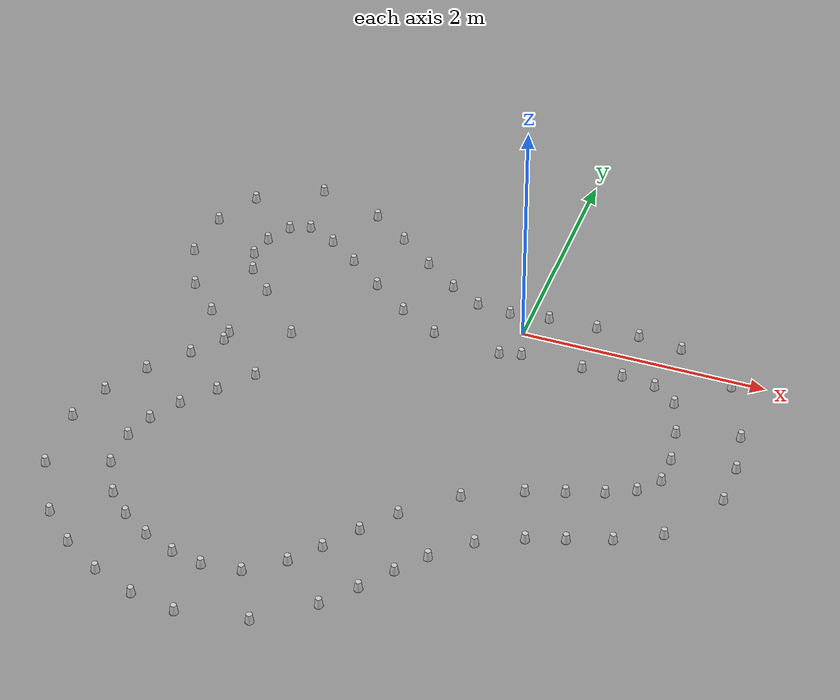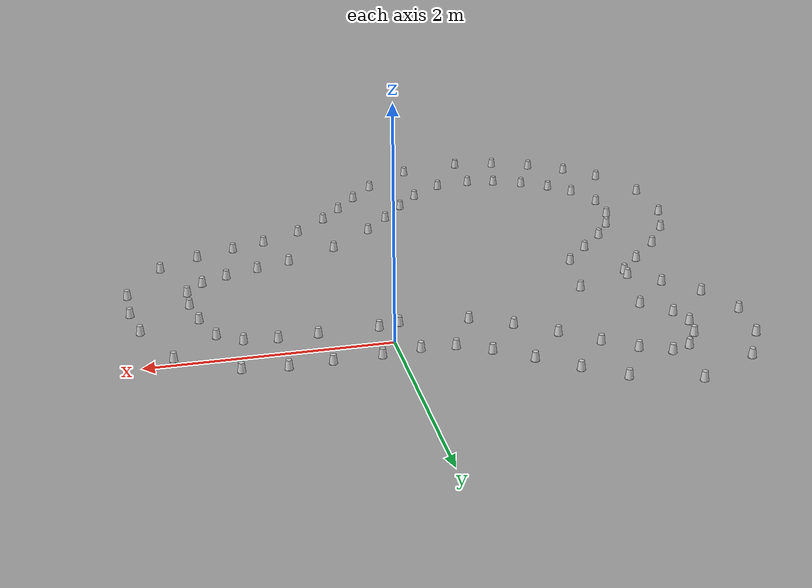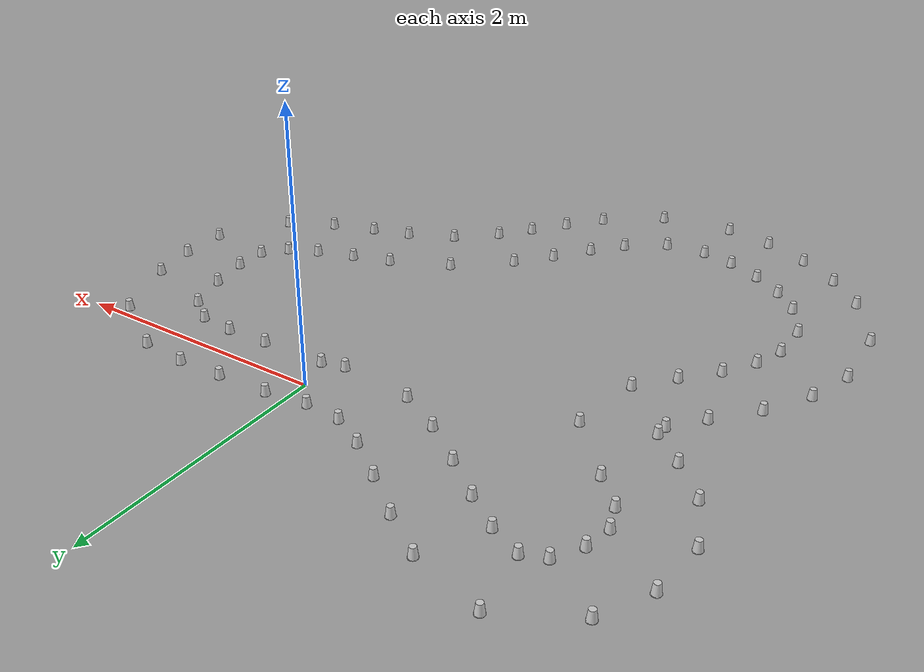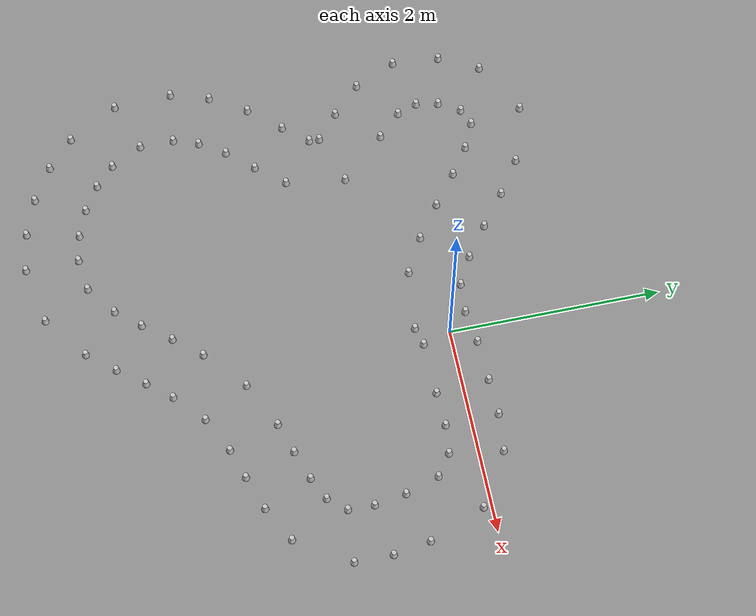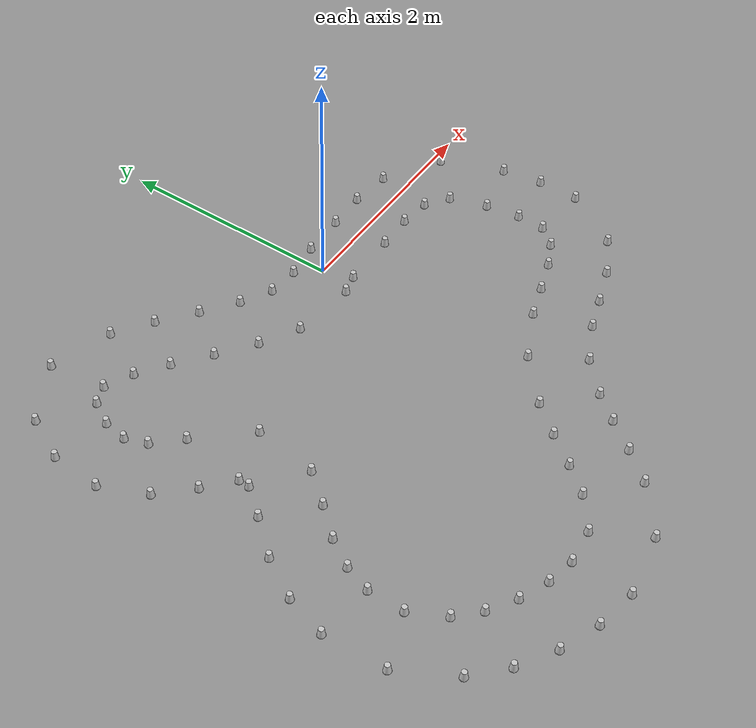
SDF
<?xml version='1.0' encoding='UTF-8'?>
<sdf version="1.4">
  <model name="some track">
    <include>
      <uri>model://cone_yellow</uri>
      <pose>0.07430866670189087 -0.2638961795019628 0 0 0 0</pose>
      <name>cone_right_0</name>
    </include>
    <include>
      <uri>model://cone_yellow</uri>
      <pose>0.5748610550502125 -0.2520921069309254 0 0 0 0</pose>
      <name>cone_right_1</name>
    </include>
    <include>
      <uri>model://cone_yellow</uri>
      <pose>0.9016667472375249 -0.24053589664841046 0 0 0 0</pose>
      <name>cone_right_2</name>
    </include>
    <include>
      <uri>model://cone_yellow</uri>
      <pose>1.1763415312059293 -0.2705759295244309 0 0 0 0</pose>
      <name>cone_right_3</name>
    </include>
    <include>
      <uri>model://cone_yellow</uri>
      <pose>1.3763170020076358 -0.4116887312444141 0 0 0 0</pose>
      <name>cone_right_4</name>
    </include>
    <include>
      <uri>model://cone_yellow</uri>
      <pose>1.4798660922021272 -0.7336152892234061 0 0 0 0</pose>
      <name>cone_right_5</name>
    </include>
    <include>
      <uri>model://cone_yellow</uri>
      <pose>1.5276191321703758 -1.0334740695669802 0 0 0 0</pose>
      <name>cone_right_6</name>
    </include>
    <include>
      <uri>model://cone_yellow</uri>
      <pose>1.5214567105554928 -1.2794951866127873 0 0 0 0</pose>
      <name>cone_right_7</name>
    </include>
    <include>
      <uri>model://cone_yellow</uri>
      <pose>1.3774204180928538 -1.4451368813345178 0 0 0 0</pose>
      <name>cone_right_8</name>
    </include>
    <include>
      <uri>model://cone_yellow</uri>
      <pose>1.157840332318151 -1.5493517444985283 0 0 0 0</pose>
      <name>cone_right_9</name>
    </include>
    <include>
      <uri>model://cone_yellow</uri>
      <pose>0.8755564144367286 -1.6447745633668123 0 0 0 0</pose>
      <name>cone_right_10</name>
    </include>
    <include>
      <uri>model://cone_yellow</uri>
      <pose>0.5829038775490897 -1.7391457687664875 0 0 0 0</pose>
      <name>cone_right_11</name>
    </include>
    <include>
      <uri>model://cone_yellow</uri>
      <pose>0.14491013542980857 -1.9468608420953462 0 0 0 0</pose>
      <name>cone_right_12</name>
    </include>
    <include>
      <uri>model://cone_yellow</uri>
      <pose>-0.23542150183054916 -2.2796049442948862 0 0 0 0</pose>
      <name>cone_right_13</name>
    </include>
    <include>
      <uri>model://cone_yellow</uri>
      <pose>-0.4483009072300326 -2.5325707649158056 0 0 0 0</pose>
      <name>cone_right_14</name>
    </include>
    <include>
      <uri>model://cone_yellow</uri>
      <pose>-0.6450129606127291 -2.787502713797505 0 0 0 0</pose>
      <name>cone_right_15</name>
    </include>
    <include>
      <uri>model://cone_yellow</uri>
      <pose>-0.8343871104505265 -3.0111173200243018 0 0 0 0</pose>
      <name>cone_right_16</name>
    </include>
    <include>
      <uri>model://cone_yellow</uri>
      <pose>-1.114851493637219 -3.2178944309040296 0 0 0 0</pose>
      <name>cone_right_17</name>
    </include>
    <include>
      <uri>model://cone_yellow</uri>
      <pose>-1.4236344250713888 -3.2539900093771834 0 0 0 0</pose>
      <name>cone_right_18</name>
    </include>
    <include>
      <uri>model://cone_yellow</uri>
      <pose>-1.673426091023246 -3.205180904386297 0 0 0 0</pose>
      <name>cone_right_19</name>
    </include>
    <include>
      <uri>model://cone_yellow</uri>
      <pose>-1.9284727515597517 -3.102299525745067 0 0 0 0</pose>
      <name>cone_right_20</name>
    </include>
    <include>
      <uri>model://cone_yellow</uri>
      <pose>-2.1588559409976433 -2.9560352942310755 0 0 0 0</pose>
      <name>cone_right_21</name>
    </include>
    <include>
      <uri>model://cone_yellow</uri>
      <pose>-2.342334074847603 -2.7779407319128455 0 0 0 0</pose>
      <name>cone_right_22</name>
    </include>
    <include>
      <uri>model://cone_yellow</uri>
      <pose>-2.4949831682069865 -2.481363429575017 0 0 0 0</pose>
      <name>cone_right_23</name>
    </include>
    <include>
      <uri>model://cone_yellow</uri>
      <pose>-2.494459920703485 -2.159965609654933 0 0 0 0</pose>
      <name>cone_right_24</name>
    </include>
    <include>
      <uri>model://cone_yellow</uri>
      <pose>-2.412615154532264 -1.9260396138208535 0 0 0 0</pose>
      <name>cone_right_25</name>
    </include>
    <include>
      <uri>model://cone_yellow</uri>
      <pose>-2.261699598421077 -1.6896284952703042 0 0 0 0</pose>
      <name>cone_right_26</name>
    </include>
    <include>
      <uri>model://cone_yellow</uri>
      <pose>-2.0485210873663133 -1.4486108764327281 0 0 0 0</pose>
      <name>cone_right_27</name>
    </include>
    <include>
      <uri>model://cone_yellow</uri>
      <pose>-1.831534879748447 -1.1879410710765632 0 0 0 0</pose>
      <name>cone_right_28</name>
    </include>
    <include>
      <uri>model://cone_yellow</uri>
      <pose>-1.748579733300911 -0.6282150702822639 0 0 0 0</pose>
      <name>cone_right_29</name>
    </include>
    <include>
      <uri>model://cone_yellow</uri>
      <pose>-2.1316545948452066 -0.20440502353741183 0 0 0 0</pose>
      <name>cone_right_30</name>
    </include>
    <include>
      <uri>model://cone_yellow</uri>
      <pose>-2.3421167732172883 0.01252069447264581 0 0 0 0</pose>
      <name>cone_right_31</name>
    </include>
    <include>
      <uri>model://cone_yellow</uri>
      <pose>-2.410021019411043 0.20411792330180306 0 0 0 0</pose>
      <name>cone_right_32</name>
    </include>
    <include>
      <uri>model://cone_yellow</uri>
      <pose>-2.370363605037843 0.41447098112218456 0 0 0 0</pose>
      <name>cone_right_33</name>
    </include>
    <include>
      <uri>model://cone_yellow</uri>
      <pose>-2.25413358018921 0.6133565820576551 0 0 0 0</pose>
      <name>cone_right_34</name>
    </include>
    <include>
      <uri>model://cone_yellow</uri>
      <pose>-2.091167621797466 0.67868330867577 0 0 0 0</pose>
      <name>cone_right_35</name>
    </include>
    <include>
      <uri>model://cone_yellow</uri>
      <pose>-1.849620879036397 0.5661163002547369 0 0 0 0</pose>
      <name>cone_right_36</name>
    </include>
    <include>
      <uri>model://cone_yellow</uri>
      <pose>-1.5953832951943367 0.3879262579523245 0 0 0 0</pose>
      <name>cone_right_37</name>
    </include>
    <include>
      <uri>model://cone_yellow</uri>
      <pose>-1.307555807323895 0.16358131667011547 0 0 0 0</pose>
      <name>cone_right_38</name>
    </include>
    <include>
      <uri>model://cone_yellow</uri>
      <pose>-0.9988897912046181 -0.0617445838386583 0 0 0 0</pose>
      <name>cone_right_39</name>
    </include>
    <include>
      <uri>model://cone_yellow</uri>
      <pose>-0.6686155065677699 -0.24386478884162519 0 0 0 0</pose>
      <name>cone_right_40</name>
    </include>
    <include>
      <uri>model://cone_yellow</uri>
      <pose>-0.09852624889425793 -0.3086808771177365 0 0 0 0</pose>
      <name>cone_right_41</name>
    </include>
    <include>
      <uri>model://cone_blue</uri>
      <pose>0.1482748478648746 0.23060256068264542 0 0 0 0</pose>
      <name>cone_left_0</name>
    </include>
    <include>
      <uri>model://cone_blue</uri>
      <pose>0.543329024144354 0.2469126335545253 0 0 0 0</pose>
      <name>cone_left_1</name>
    </include>
    <include>
      <uri>model://cone_blue</uri>
      <pose>0.8931277722285759 0.25939118394014554 0 0 0 0</pose>
      <name>cone_left_2</name>
    </include>
    <include>
      <uri>model://cone_blue</uri>
      <pose>1.255693967377736 0.2230871042076882 0 0 0 0</pose>
      <name>cone_left_3</name>
    </include>
    <include>
      <uri>model://cone_blue</uri>
      <pose>1.7484933293791858 -0.07779536302002885 0 0 0 0</pose>
      <name>cone_left_4</name>
    </include>
    <include>
      <uri>model://cone_blue</uri>
      <pose>1.965321973785794 -0.6138965060863196 0 0 0 0</pose>
      <name>cone_left_5</name>
    </include>
    <include>
      <uri>model://cone_blue</uri>
      <pose>2.0228444290013297 -0.9645400041225746 0 0 0 0</pose>
      <name>cone_left_6</name>
    </include>
    <include>
      <uri>model://cone_blue</uri>
      <pose>2.0193809424965026 -1.3250084730899876 0 0 0 0</pose>
      <name>cone_left_7</name>
    </include>
    <include>
      <uri>model://cone_blue</uri>
      <pose>1.6994383766818244 -1.8276345079234837 0 0 0 0</pose>
      <name>cone_left_8</name>
    </include>
    <include>
      <uri>model://cone_blue</uri>
      <pose>1.3589863928043915 -2.0071074242566995 0 0 0 0</pose>
      <name>cone_left_9</name>
    </include>
    <include>
      <uri>model://cone_blue</uri>
      <pose>1.0288784423180546 -2.1206866936664697 0 0 0 0</pose>
      <name>cone_left_10</name>
    </include>
    <include>
      <uri>model://cone_blue</uri>
      <pose>0.7403878413848423 -2.213696926319158 0 0 0 0</pose>
      <name>cone_left_11</name>
    </include>
    <include>
      <uri>model://cone_blue</uri>
      <pose>0.40019997085521264 -2.3767760662133925 0 0 0 0</pose>
      <name>cone_left_12</name>
    </include>
    <include>
      <uri>model://cone_blue</uri>
      <pose>0.12390149138594975 -2.627293003546187 0 0 0 0</pose>
      <name>cone_left_13</name>
    </include>
    <include>
      <uri>model://cone_blue</uri>
      <pose>-0.059410323285347094 -2.8468383479070547 0 0 0 0</pose>
      <name>cone_left_14</name>
    </include>
    <include>
      <uri>model://cone_blue</uri>
      <pose>-0.24871783320856303 -3.0923800202598195 0 0 0 0</pose>
      <name>cone_left_15</name>
    </include>
    <include>
      <uri>model://cone_blue</uri>
      <pose>-0.46068051131194676 -3.3432970571550857 0 0 0 0</pose>
      <name>cone_left_16</name>
    </include>
    <include>
      <uri>model://cone_blue</uri>
      <pose>-0.873873366407043 -3.6559920709303566 0 0 0 0</pose>
      <name>cone_left_17</name>
    </include>
    <include>
      <uri>model://cone_blue</uri>
      <pose>-1.4223439389312216 -3.753988344019932 0 0 0 0</pose>
      <name>cone_left_18</name>
    </include>
    <include>
      <uri>model://cone_blue</uri>
      <pose>-1.7885105617410701 -3.6917562475754044 0 0 0 0</pose>
      <name>cone_left_19</name>
    </include>
    <include>
      <uri>model://cone_blue</uri>
      <pose>-2.132546078517236 -3.558757713561327 0 0 0 0</pose>
      <name>cone_left_20</name>
    </include>
    <include>
      <uri>model://cone_blue</uri>
      <pose>-2.4434179157730123 -3.3671611660902205 0 0 0 0</pose>
      <name>cone_left_21</name>
    </include>
    <include>
      <uri>model://cone_blue</uri>
      <pose>-2.7064800183179747 -3.12057425603749 0 0 0 0</pose>
      <name>cone_left_22</name>
    </include>
    <include>
      <uri>model://cone_blue</uri>
      <pose>-2.965776331034803 -2.6497492895353516 0 0 0 0</pose>
      <name>cone_left_23</name>
    </include>
    <include>
      <uri>model://cone_blue</uri>
      <pose>-2.9909578392828493 -2.10089093787117 0 0 0 0</pose>
      <name>cone_left_24</name>
    </include>
    <include>
      <uri>model://cone_blue</uri>
      <pose>-2.8768574209227147 -1.7403540783134859 0 0 0 0</pose>
      <name>cone_left_25</name>
    </include>
    <include>
      <uri>model://cone_blue</uri>
      <pose>-2.6713687284992056 -1.4029732949668232 0 0 0 0</pose>
      <name>cone_left_26</name>
    </include>
    <include>
      <uri>model://cone_blue</uri>
      <pose>-2.4179143186979317 -1.1116410845427342 0 0 0 0</pose>
      <name>cone_left_27</name>
    </include>
    <include>
      <uri>model://cone_blue</uri>
      <pose>-2.2278051681184126 -0.8830314802874502 0 0 0 0</pose>
      <name>cone_left_28</name>
    </include>
    <include>
      <uri>model://cone_blue</uri>
      <pose>-2.2233266372431006 -0.7851079547522278 0 0 0 0</pose>
      <name>cone_left_29</name>
    </include>
    <include>
      <uri>model://cone_blue</uri>
      <pose>-2.4606153914266 -0.5809482405956069 0 0 0 0</pose>
      <name>cone_left_30</name>
    </include>
    <include>
      <uri>model://cone_blue</uri>
      <pose>-2.717920338324026 -0.3172848246641119 0 0 0 0</pose>
      <name>cone_left_31</name>
    </include>
    <include>
      <uri>model://cone_blue</uri>
      <pose>-2.893858805867149 0.07801877026239727 0 0 0 0</pose>
      <name>cone_left_32</name>
    </include>
    <include>
      <uri>model://cone_blue</uri>
      <pose>-2.8584587240685293 0.5229290595599883 0 0 0 0</pose>
      <name>cone_left_33</name>
    </include>
    <include>
      <uri>model://cone_blue</uri>
      <pose>-2.6702204502449867 0.8906140735113345 0 0 0 0</pose>
      <name>cone_left_34</name>
    </include>
    <include>
      <uri>model://cone_blue</uri>
      <pose>-2.1617672301185222 1.1736739099046352 0 0 0 0</pose>
      <name>cone_left_35</name>
    </include>
    <include>
      <uri>model://cone_blue</uri>
      <pose>-1.6143727270979145 1.007317282812039 0 0 0 0</pose>
      <name>cone_left_36</name>
    </include>
    <include>
      <uri>model://cone_blue</uri>
      <pose>-1.2999565702796254 0.791315710226634 0 0 0 0</pose>
      <name>cone_left_37</name>
    </include>
    <include>
      <uri>model://cone_blue</uri>
      <pose>-0.9992946841182867 0.5572500605653055 0 0 0 0</pose>
      <name>cone_left_38</name>
    </include>
    <include>
      <uri>model://cone_blue</uri>
      <pose>-0.711908859754311 0.3476964314296147 0 0 0 0</pose>
      <name>cone_left_39</name>
    </include>
    <include>
      <uri>model://cone_blue</uri>
      <pose>-0.450842004376405 0.20621820544199312 0 0 0 0</pose>
      <name>cone_left_40</name>
    </include>
    <include>
      <uri>model://cone_blue</uri>
      <pose>-0.16959966804363086 0.18624191392185335 0 0 0 0</pose>
      <name>cone_left_41</name>
    </include>

  </model>
</sdf>

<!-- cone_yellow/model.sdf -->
<sdf version='1.4'>
  <model name="cone_yellow">
    <link name="link">
    <collision name="collision"><geometry><box><size> 0.05 0.05 0.01</size>
             </box></geometry></collision>
      <visual name="visual">
        <geometry>
          <mesh>
            <uri>model://cup.dae</uri>
            <scale>1 1 1</scale>
          </mesh>
        </geometry>
        <material>
            <script>
              <uri>model://cone_yellow/materials/scripts</uri>
              <uri>model://cone_yellow/materials/textures</uri>
              <name>cone_yellow/Image</name>
            </script>
        </material>
      </visual>
    </link>
  </model>
</sdf>

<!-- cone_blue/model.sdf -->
<sdf version='1.4'>
  <model name="cone_blue">
    <link name="link">
    <collision name="collision"><geometry><box><size> 0.05 0.05 0.01</size>
             </box></geometry></collision>
      <visual name="visual">
        <geometry>
          <mesh>
            <uri>model://cup.dae</uri>
            <scale>1 1 1</scale>
          </mesh>
        </geometry>
        <material>
            <script>
              <uri>model://cone_blue/materials/scripts</uri>
              <uri>model://cone_blue/materials/textures</uri>
              <name>cone_blue/Image</name>
            </script>
        </material>
      </visual>
    </link>
  </model>
</sdf>
